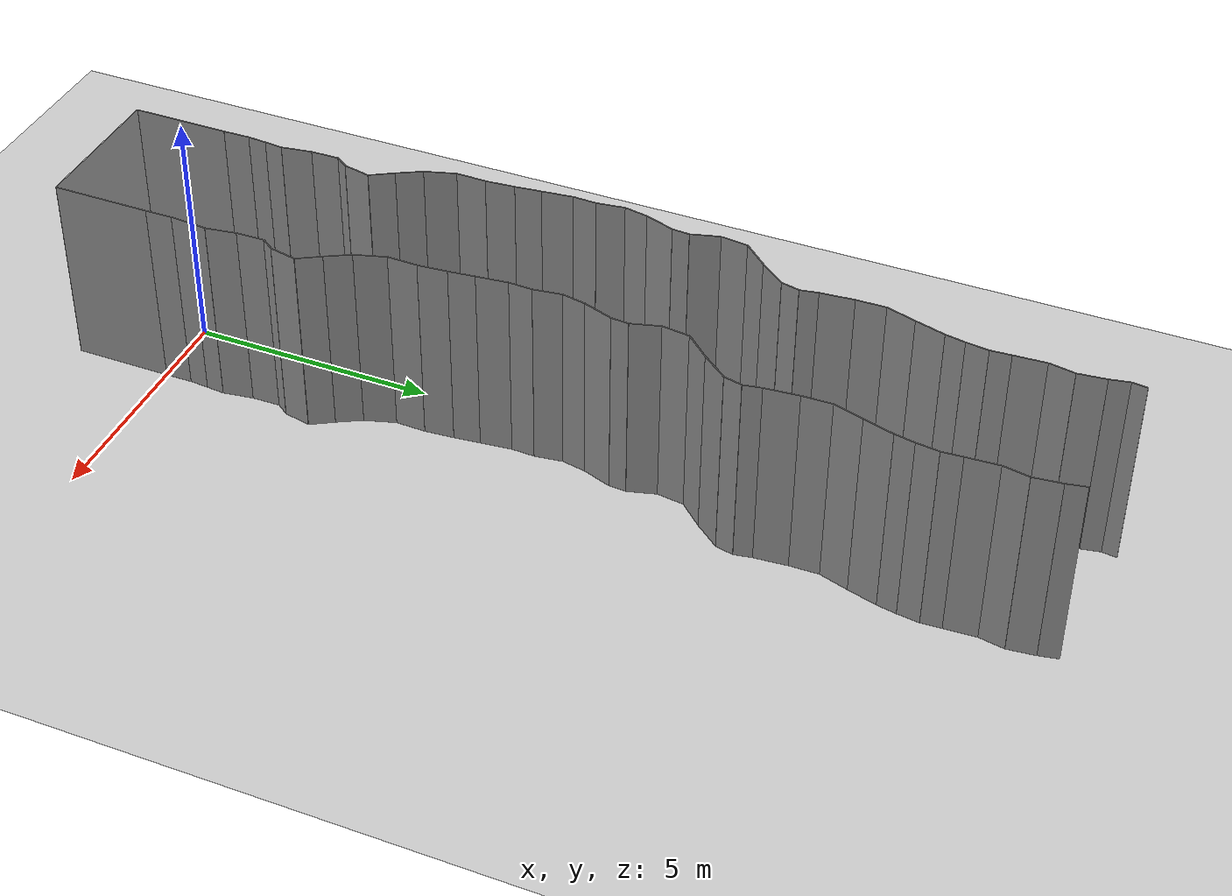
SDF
<sdf version="1.6">
 <world name="default">
  <model name="ground_plane">
   <static>1</static>
   <link name="link">
    <collision name="collision">
     <geometry><plane><normal>0 0 1</normal><size>200 200</size></plane></geometry>
     <surface><friction><ode><mu>100</mu><mu2>50</mu2></ode></friction></surface>
    </collision>
    <visual name="visual">
     <cast_shadows>0</cast_shadows>
     <geometry><plane><normal>0 0 1</normal><size>200 200</size></plane></geometry>
     <material>
      <script><uri>file://media/materials/scripts/gazebo.material</uri><name>Gazebo/Grey</name></script>
     </material>
    </visual>
   </link>
   <pose>0 100 0 0 -0 0</pose>
  </model>
  <model name="wall_back">
   <static>1</static>
   <pose>0.0 -2 2 0.0 0 0.0</pose>
   <link name="link">
    <collision name="collision"><geometry><box><size>3 0.02 4</size></box></geometry></collision>
    <visual name="visual">
     <material>
      <script><name>Gazebo/Grey</name><uri>file://media/materials/scripts/gazebo.material</uri></script>
     </material>
     <geometry><box><size>3 0.02 4</size></box></geometry>
    </visual>
   </link>
  </model>
  <model name="wall_left">
   <static>1</static>
   <pose>1.5 -1 2 0 0 0.00</pose>
   <link name="link">
    <collision name="collision"><geometry><box><size>0.02 2 4</size></box></geometry></collision>
    <visual name="visual">
     <material>
      <script><name>Gazebo/Grey</name><uri>file://media/materials/scripts/gazebo.material</uri></script>
     </material>
     <geometry><box><size>0.02 2 4</size></box></geometry>
    </visual>
   </link>
  </model>
  <model name="wall_right">
   <static>1</static>
   <pose>-1.5 -1 2 0 0 0.00</pose>
   <link name="link">
    <collision name="collision"><geometry><box><size>0.02 2 4</size></box></geometry></collision>
    <visual name="visual">
     <material>
      <script><name>Gazebo/Grey</name><uri>file://media/materials/scripts/gazebo.material</uri></script>
     </material>
     <geometry><box><size>0.02 2 4</size></box></geometry>
    </visual>
   </link>
  </model>
  <model name="wall_0">
   <static>1</static>
   <pose>-1.5054074927113055 0.2771026538506849 2 0 0 0.01951192592504633</pose>
   <link name="link">
    <collision name="collision"><geometry><box><size>0.02 0.554310821646 4</size></box></geometry></collision>
    <visual name="visual">
     <material>
      <script><name>Gazebo/Grey</name><uri>file://media/materials/scripts/gazebo.material</uri></script>
     </material>
     <geometry><box><size>0.02 0.554310821646 4</size></box></geometry>
    </visual>
   </link>
  </model>
  <model name="wall_1">
   <static>1</static>
   <pose>1.4945925072886945 0.2771026538506849 2 0 0 0.01951192592504633</pose>
   <link name="link">
    <collision name="collision"><geometry><box><size>0.02 0.554310821646 4</size></box></geometry></collision>
    <visual name="visual">
     <material>
      <script><name>Gazebo/Grey</name><uri>file://media/materials/scripts/gazebo.material</uri></script>
     </material>
     <geometry><box><size>0.02 0.554310821646 4</size></box></geometry>
    </visual>
   </link>
  </model>
  <model name="wall_2">
   <static>1</static>
   <pose>-1.4959044309255267 0.7502712776522686 2 0 0 -0.0759025611334684</pose>
   <link name="link">
    <collision name="collision"><geometry><box><size>0.02 0.393264232842 4</size></box></geometry></collision>
    <visual name="visual">
     <material>
      <script><name>Gazebo/Grey</name><uri>file://media/materials/scripts/gazebo.material</uri></script>
     </material>
     <geometry><box><size>0.02 0.393264232842 4</size></box></geometry>
    </visual>
   </link>
  </model>
  <model name="wall_3">
   <static>1</static>
   <pose>1.5040955690744733 0.7502712776522686 2 0 0 -0.0759025611334684</pose>
   <link name="link">
    <collision name="collision"><geometry><box><size>0.02 0.393264232842 4</size></box></geometry></collision>
    <visual name="visual">
     <material>
      <script><name>Gazebo/Grey</name><uri>file://media/materials/scripts/gazebo.material</uri></script>
     </material>
     <geometry><box><size>0.02 0.393264232842 4</size></box></geometry>
    </visual>
   </link>
  </model>
  <model name="wall_4">
   <static>1</static>
   <pose>-1.4643491921734009 1.134139191659948 2 0 0 -0.0883979491608856</pose>
   <link name="link">
    <collision name="collision"><geometry><box><size>0.02 0.377076202938 4</size></box></geometry></collision>
    <visual name="visual">
     <material>
      <script><name>Gazebo/Grey</name><uri>file://media/materials/scripts/gazebo.material</uri></script>
     </material>
     <geometry><box><size>0.02 0.377076202938 4</size></box></geometry>
    </visual>
   </link>
  </model>
  <model name="wall_5">
   <static>1</static>
   <pose>1.5356508078265991 1.134139191659948 2 0 0 -0.0883979491608856</pose>
   <link name="link">
    <collision name="collision"><geometry><box><size>0.02 0.377076202938 4</size></box></geometry></collision>
    <visual name="visual">
     <material>
      <script><name>Gazebo/Grey</name><uri>file://media/materials/scripts/gazebo.material</uri></script>
     </material>
     <geometry><box><size>0.02 0.377076202938 4</size></box></geometry>
    </visual>
   </link>
  </model>
  <model name="wall_6">
   <static>1</static>
   <pose>-1.4956004174545228 1.6342153116711633 2 0 0 0.15219171952678584</pose>
   <link name="link">
    <collision name="collision"><geometry><box><size>0.02 0.631851815281 4</size></box></geometry></collision>
    <visual name="visual">
     <material>
      <script><name>Gazebo/Grey</name><uri>file://media/materials/scripts/gazebo.material</uri></script>
     </material>
     <geometry><box><size>0.02 0.631851815281 4</size></box></geometry>
    </visual>
   </link>
  </model>
  <model name="wall_7">
   <static>1</static>
   <pose>1.5043995825454772 1.6342153116711633 2 0 0 0.15219171952678584</pose>
   <link name="link">
    <collision name="collision"><geometry><box><size>0.02 0.631851815281 4</size></box></geometry></collision>
    <visual name="visual">
     <material>
      <script><name>Gazebo/Grey</name><uri>file://media/materials/scripts/gazebo.material</uri></script>
     </material>
     <geometry><box><size>0.02 0.631851815281 4</size></box></geometry>
    </visual>
   </link>
  </model>
  <model name="wall_8">
   <static>1</static>
   <pose>-1.5485579459105738 2.2367578282285723 2 0 0 0.017435955871296434</pose>
   <link name="link">
    <collision name="collision"><geometry><box><size>0.02 0.580624937606 4</size></box></geometry></collision>
    <visual name="visual">
     <material>
      <script><name>Gazebo/Grey</name><uri>file://media/materials/scripts/gazebo.material</uri></script>
     </material>
     <geometry><box><size>0.02 0.580624937606 4</size></box></geometry>
    </visual>
   </link>
  </model>
  <model name="wall_9">
   <static>1</static>
   <pose>1.4514420540894262 2.2367578282285723 2 0 0 0.017435955871296434</pose>
   <link name="link">
    <collision name="collision"><geometry><box><size>0.02 0.580624937606 4</size></box></geometry></collision>
    <visual name="visual">
     <material>
      <script><name>Gazebo/Grey</name><uri>file://media/materials/scripts/gazebo.material</uri></script>
     </material>
     <geometry><box><size>0.02 0.580624937606 4</size></box></geometry>
    </visual>
   </link>
  </model>
  <model name="wall_10">
   <static>1</static>
   <pose>-1.462039240900548 2.654437864276564 2 0 0 -0.6232157235891173</pose>
   <link name="link">
    <collision name="collision"><geometry><box><size>0.02 0.313819667117 4</size></box></geometry></collision>
    <visual name="visual">
     <material>
      <script><name>Gazebo/Grey</name><uri>file://media/materials/scripts/gazebo.material</uri></script>
     </material>
     <geometry><box><size>0.02 0.313819667117 4</size></box></geometry>
    </visual>
   </link>
  </model>
  <model name="wall_11">
   <static>1</static>
   <pose>1.537960759099452 2.654437864276564 2 0 0 -0.6232157235891173</pose>
   <link name="link">
    <collision name="collision"><geometry><box><size>0.02 0.313819667117 4</size></box></geometry></collision>
    <visual name="visual">
     <material>
      <script><name>Gazebo/Grey</name><uri>file://media/materials/scripts/gazebo.material</uri></script>
     </material>
     <geometry><box><size>0.02 0.313819667117 4</size></box></geometry>
    </visual>
   </link>
  </model>
  <model name="wall_12">
   <static>1</static>
   <pose>-1.3113700297301076 3.058214808628439 2 0 0 -0.21063580695061418</pose>
   <link name="link">
    <collision name="collision"><geometry><box><size>0.02 0.565222955651 4</size></box></geometry></collision>
    <visual name="visual">
     <material>
      <script><name>Gazebo/Grey</name><uri>file://media/materials/scripts/gazebo.material</uri></script>
     </material>
     <geometry><box><size>0.02 0.565222955651 4</size></box></geometry>
    </visual>
   </link>
  </model>
  <model name="wall_13">
   <static>1</static>
   <pose>1.6886299702698924 3.058214808628439 2 0 0 -0.21063580695061418</pose>
   <link name="link">
    <collision name="collision"><geometry><box><size>0.02 0.565222955651 4</size></box></geometry></collision>
    <visual name="visual">
     <material>
      <script><name>Gazebo/Grey</name><uri>file://media/materials/scripts/gazebo.material</uri></script>
     </material>
     <geometry><box><size>0.02 0.565222955651 4</size></box></geometry>
    </visual>
   </link>
  </model>
  <model name="wall_14">
   <static>1</static>
   <pose>-1.387883242274648 3.5617061277047846 2 0 0 0.5382361326546208</pose>
   <link name="link">
    <collision name="collision"><geometry><box><size>0.02 0.529052667385 4</size></box></geometry></collision>
    <visual name="visual">
     <material>
      <script><name>Gazebo/Grey</name><uri>file://media/materials/scripts/gazebo.material</uri></script>
     </material>
     <geometry><box><size>0.02 0.529052667385 4</size></box></geometry>
    </visual>
   </link>
  </model>
  <model name="wall_15">
   <static>1</static>
   <pose>1.612116757725352 3.5617061277047846 2 0 0 0.5382361326546208</pose>
   <link name="link">
    <collision name="collision"><geometry><box><size>0.02 0.529052667385 4</size></box></geometry></collision>
    <visual name="visual">
     <material>
      <script><name>Gazebo/Grey</name><uri>file://media/materials/scripts/gazebo.material</uri></script>
     </material>
     <geometry><box><size>0.02 0.529052667385 4</size></box></geometry>
    </visual>
   </link>
  </model>
  <model name="wall_16">
   <static>1</static>
   <pose>-1.6585811992603445 4.029327164597183 2 0 0 0.5118126217211321</pose>
   <link name="link">
    <collision name="collision"><geometry><box><size>0.02 0.55168367622 4</size></box></geometry></collision>
    <visual name="visual">
     <material>
      <script><name>Gazebo/Grey</name><uri>file://media/materials/scripts/gazebo.material</uri></script>
     </material>
     <geometry><box><size>0.02 0.55168367622 4</size></box></geometry>
    </visual>
   </link>
  </model>
  <model name="wall_17">
   <static>1</static>
   <pose>1.3414188007396555 4.029327164597183 2 0 0 0.5118126217211321</pose>
   <link name="link">
    <collision name="collision"><geometry><box><size>0.02 0.55168367622 4</size></box></geometry></collision>
    <visual name="visual">
     <material>
      <script><name>Gazebo/Grey</name><uri>file://media/materials/scripts/gazebo.material</uri></script>
     </material>
     <geometry><box><size>0.02 0.55168367622 4</size></box></geometry>
    </visual>
   </link>
  </model>
  <model name="wall_18">
   <static>1</static>
   <pose>-1.8909177781409472 4.583250966037759 2 0 0 0.3008320638870248</pose>
   <link name="link">
    <collision name="collision"><geometry><box><size>0.02 0.656333428633 4</size></box></geometry></collision>
    <visual name="visual">
     <material>
      <script><name>Gazebo/Grey</name><uri>file://media/materials/scripts/gazebo.material</uri></script>
     </material>
     <geometry><box><size>0.02 0.656333428633 4</size></box></geometry>
    </visual>
   </link>
  </model>
  <model name="wall_19">
   <static>1</static>
   <pose>1.1090822218590528 4.583250966037759 2 0 0 0.3008320638870248</pose>
   <link name="link">
    <collision name="collision"><geometry><box><size>0.02 0.656333428633 4</size></box></geometry></collision>
    <visual name="visual">
     <material>
      <script><name>Gazebo/Grey</name><uri>file://media/materials/scripts/gazebo.material</uri></script>
     </material>
     <geometry><box><size>0.02 0.656333428633 4</size></box></geometry>
    </visual>
   </link>
  </model>
  <model name="wall_20">
   <static>1</static>
   <pose>-1.9805885233839635 5.206537923220193 2 0 0 -0.02442560122571733</pose>
   <link name="link">
    <collision name="collision"><geometry><box><size>0.02 0.619901155349 4</size></box></geometry></collision>
    <visual name="visual">
     <material>
      <script><name>Gazebo/Grey</name><uri>file://media/materials/scripts/gazebo.material</uri></script>
     </material>
     <geometry><box><size>0.02 0.619901155349 4</size></box></geometry>
    </visual>
   </link>
  </model>
  <model name="wall_21">
   <static>1</static>
   <pose>1.0194114766160365 5.206537923220193 2 0 0 -0.02442560122571733</pose>
   <link name="link">
    <collision name="collision"><geometry><box><size>0.02 0.619901155349 4</size></box></geometry></collision>
    <visual name="visual">
     <material>
      <script><name>Gazebo/Grey</name><uri>file://media/materials/scripts/gazebo.material</uri></script>
     </material>
     <geometry><box><size>0.02 0.619901155349 4</size></box></geometry>
    </visual>
   </link>
  </model>
  <model name="wall_22">
   <static>1</static>
   <pose>-1.9973362197201507 5.817134929957269 2 0 0 0.08068421558176188</pose>
   <link name="link">
    <collision name="collision"><geometry><box><size>0.02 0.603440885994 4</size></box></geometry></collision>
    <visual name="visual">
     <material>
      <script><name>Gazebo/Grey</name><uri>file://media/materials/scripts/gazebo.material</uri></script>
     </material>
     <geometry><box><size>0.02 0.603440885994 4</size></box></geometry>
    </visual>
   </link>
  </model>
  <model name="wall_23">
   <static>1</static>
   <pose>1.0026637802798493 5.817134929957269 2 0 0 0.08068421558176188</pose>
   <link name="link">
    <collision name="collision"><geometry><box><size>0.02 0.603440885994 4</size></box></geometry></collision>
    <visual name="visual">
     <material>
      <script><name>Gazebo/Grey</name><uri>file://media/materials/scripts/gazebo.material</uri></script>
     </material>
     <geometry><box><size>0.02 0.603440885994 4</size></box></geometry>
    </visual>
   </link>
  </model>
  <model name="wall_24">
   <static>1</static>
   <pose>-2.0521156811494174 6.386560087364572 2 0 0 0.11289104059538006</pose>
   <link name="link">
    <collision name="collision"><geometry><box><size>0.02 0.540815066134 4</size></box></geometry></collision>
    <visual name="visual">
     <material>
      <script><name>Gazebo/Grey</name><uri>file://media/materials/scripts/gazebo.material</uri></script>
     </material>
     <geometry><box><size>0.02 0.540815066134 4</size></box></geometry>
    </visual>
   </link>
  </model>
  <model name="wall_25">
   <static>1</static>
   <pose>0.9478843188505826 6.386560087364572 2 0 0 0.11289104059538006</pose>
   <link name="link">
    <collision name="collision"><geometry><box><size>0.02 0.540815066134 4</size></box></geometry></collision>
    <visual name="visual">
     <material>
      <script><name>Gazebo/Grey</name><uri>file://media/materials/scripts/gazebo.material</uri></script>
     </material>
     <geometry><box><size>0.02 0.540815066134 4</size></box></geometry>
    </visual>
   </link>
  </model>
  <model name="wall_26">
   <static>1</static>
   <pose>-2.118105277894146 6.975692398489997 2 0 0 0.11041890806038186</pose>
   <link name="link">
    <collision name="collision"><geometry><box><size>0.02 0.64481900844 4</size></box></geometry></collision>
    <visual name="visual">
     <material>
      <script><name>Gazebo/Grey</name><uri>file://media/materials/scripts/gazebo.material</uri></script>
     </material>
     <geometry><box><size>0.02 0.64481900844 4</size></box></geometry>
    </visual>
   </link>
  </model>
  <model name="wall_27">
   <static>1</static>
   <pose>0.8818947221058542 6.975692398489997 2 0 0 0.11041890806038186</pose>
   <link name="link">
    <collision name="collision"><geometry><box><size>0.02 0.64481900844 4</size></box></geometry></collision>
    <visual name="visual">
     <material>
      <script><name>Gazebo/Grey</name><uri>file://media/materials/scripts/gazebo.material</uri></script>
     </material>
     <geometry><box><size>0.02 0.64481900844 4</size></box></geometry>
    </visual>
   </link>
  </model>
  <model name="wall_28">
   <static>1</static>
   <pose>-2.144456496622843 7.5351797083397845 2 0 0 -0.038370300423932795</pose>
   <link name="link">
    <collision name="collision"><geometry><box><size>0.02 0.478434695416 4</size></box></geometry></collision>
    <visual name="visual">
     <material>
      <script><name>Gazebo/Grey</name><uri>file://media/materials/scripts/gazebo.material</uri></script>
     </material>
     <geometry><box><size>0.02 0.478434695416 4</size></box></geometry>
    </visual>
   </link>
  </model>
  <model name="wall_29">
   <static>1</static>
   <pose>0.8555435033771568 7.5351797083397845 2 0 0 -0.038370300423932795</pose>
   <link name="link">
    <collision name="collision"><geometry><box><size>0.02 0.478434695416 4</size></box></geometry></collision>
    <visual name="visual">
     <material>
      <script><name>Gazebo/Grey</name><uri>file://media/materials/scripts/gazebo.material</uri></script>
     </material>
     <geometry><box><size>0.02 0.478434695416 4</size></box></geometry>
    </visual>
   </link>
  </model>
  <model name="wall_30">
   <static>1</static>
   <pose>-2.1742142331606984 8.060168310753168 2 0 0 0.135326887934024</pose>
   <link name="link">
    <collision name="collision"><geometry><box><size>0.02 0.577171577901 4</size></box></geometry></collision>
    <visual name="visual">
     <material>
      <script><name>Gazebo/Grey</name><uri>file://media/materials/scripts/gazebo.material</uri></script>
     </material>
     <geometry><box><size>0.02 0.577171577901 4</size></box></geometry>
    </visual>
   </link>
  </model>
  <model name="wall_31">
   <static>1</static>
   <pose>0.8257857668393016 8.060168310753168 2 0 0 0.135326887934024</pose>
   <link name="link">
    <collision name="collision"><geometry><box><size>0.02 0.577171577901 4</size></box></geometry></collision>
    <visual name="visual">
     <material>
      <script><name>Gazebo/Grey</name><uri>file://media/materials/scripts/gazebo.material</uri></script>
     </material>
     <geometry><box><size>0.02 0.577171577901 4</size></box></geometry>
    </visual>
   </link>
  </model>
  <model name="wall_32">
   <static>1</static>
   <pose>-2.1672094972830904 8.588856348511438 2 0 0 -0.18703950172446787</pose>
   <link name="link">
    <collision name="collision"><geometry><box><size>0.02 0.494098971182 4</size></box></geometry></collision>
    <visual name="visual">
     <material>
      <script><name>Gazebo/Grey</name><uri>file://media/materials/scripts/gazebo.material</uri></script>
     </material>
     <geometry><box><size>0.02 0.494098971182 4</size></box></geometry>
    </visual>
   </link>
  </model>
  <model name="wall_33">
   <static>1</static>
   <pose>0.8327905027169096 8.588856348511438 2 0 0 -0.18703950172446787</pose>
   <link name="link">
    <collision name="collision"><geometry><box><size>0.02 0.494098971182 4</size></box></geometry></collision>
    <visual name="visual">
     <material>
      <script><name>Gazebo/Grey</name><uri>file://media/materials/scripts/gazebo.material</uri></script>
     </material>
     <geometry><box><size>0.02 0.494098971182 4</size></box></geometry>
    </visual>
   </link>
  </model>
  <model name="wall_34">
   <static>1</static>
   <pose>-2.015668417744564 9.131479882684664 2 0 0 -0.33858379931227994</pose>
   <link name="link">
    <collision name="collision"><geometry><box><size>0.02 0.635866325784 4</size></box></geometry></collision>
    <visual name="visual">
     <material>
      <script><name>Gazebo/Grey</name><uri>file://media/materials/scripts/gazebo.material</uri></script>
     </material>
     <geometry><box><size>0.02 0.635866325784 4</size></box></geometry>
    </visual>
   </link>
  </model>
  <model name="wall_35">
   <static>1</static>
   <pose>0.9843315822554359 9.131479882684664 2 0 0 -0.33858379931227994</pose>
   <link name="link">
    <collision name="collision"><geometry><box><size>0.02 0.635866325784 4</size></box></geometry></collision>
    <visual name="visual">
     <material>
      <script><name>Gazebo/Grey</name><uri>file://media/materials/scripts/gazebo.material</uri></script>
     </material>
     <geometry><box><size>0.02 0.635866325784 4</size></box></geometry>
    </visual>
   </link>
  </model>
  <model name="wall_36">
   <static>1</static>
   <pose>-1.8993605516469905 9.607418675851601 2 0 0 -0.06073455969819481</pose>
   <link name="link">
    <collision name="collision"><geometry><box><size>0.02 0.352762347324 4</size></box></geometry></collision>
    <visual name="visual">
     <material>
      <script><name>Gazebo/Grey</name><uri>file://media/materials/scripts/gazebo.material</uri></script>
     </material>
     <geometry><box><size>0.02 0.352762347324 4</size></box></geometry>
    </visual>
   </link>
  </model>
  <model name="wall_37">
   <static>1</static>
   <pose>1.1006394483530095 9.607418675851601 2 0 0 -0.06073455969819481</pose>
   <link name="link">
    <collision name="collision"><geometry><box><size>0.02 0.352762347324 4</size></box></geometry></collision>
    <visual name="visual">
     <material>
      <script><name>Gazebo/Grey</name><uri>file://media/materials/scripts/gazebo.material</uri></script>
     </material>
     <geometry><box><size>0.02 0.352762347324 4</size></box></geometry>
    </visual>
   </link>
  </model>
  <model name="wall_38">
   <static>1</static>
   <pose>-1.9698788280360264 10.072827773237233 2 0 0 0.2736663470046549</pose>
   <link name="link">
    <collision name="collision"><geometry><box><size>0.02 0.601074348031 4</size></box></geometry></collision>
    <visual name="visual">
     <material>
      <script><name>Gazebo/Grey</name><uri>file://media/materials/scripts/gazebo.material</uri></script>
     </material>
     <geometry><box><size>0.02 0.601074348031 4</size></box></geometry>
    </visual>
   </link>
  </model>
  <model name="wall_39">
   <static>1</static>
   <pose>1.0301211719639736 10.072827773237233 2 0 0 0.2736663470046549</pose>
   <link name="link">
    <collision name="collision"><geometry><box><size>0.02 0.601074348031 4</size></box></geometry></collision>
    <visual name="visual">
     <material>
      <script><name>Gazebo/Grey</name><uri>file://media/materials/scripts/gazebo.material</uri></script>
     </material>
     <geometry><box><size>0.02 0.601074348031 4</size></box></geometry>
    </visual>
   </link>
  </model>
  <model name="wall_40">
   <static>1</static>
   <pose>-2.0156612284845594 10.640264472965416 2 0 0 -0.1267664764820144</pose>
   <link name="link">
    <collision name="collision"><geometry><box><size>0.02 0.560665985813 4</size></box></geometry></collision>
    <visual name="visual">
     <material>
      <script><name>Gazebo/Grey</name><uri>file://media/materials/scripts/gazebo.material</uri></script>
     </material>
     <geometry><box><size>0.02 0.560665985813 4</size></box></geometry>
    </visual>
   </link>
  </model>
  <model name="wall_41">
   <static>1</static>
   <pose>0.9843387715154406 10.640264472965416 2 0 0 -0.1267664764820144</pose>
   <link name="link">
    <collision name="collision"><geometry><box><size>0.02 0.560665985813 4</size></box></geometry></collision>
    <visual name="visual">
     <material>
      <script><name>Gazebo/Grey</name><uri>file://media/materials/scripts/gazebo.material</uri></script>
     </material>
     <geometry><box><size>0.02 0.560665985813 4</size></box></geometry>
    </visual>
   </link>
  </model>
  <model name="wall_42">
   <static>1</static>
   <pose>-1.756125133555819 11.155642570887409 2 0 0 -0.7567963504653398</pose>
   <link name="link">
    <collision name="collision"><geometry><box><size>0.02 0.652769425243 4</size></box></geometry></collision>
    <visual name="visual">
     <material>
      <script><name>Gazebo/Grey</name><uri>file://media/materials/scripts/gazebo.material</uri></script>
     </material>
     <geometry><box><size>0.02 0.652769425243 4</size></box></geometry>
    </visual>
   </link>
  </model>
  <model name="wall_43">
   <static>1</static>
   <pose>1.243874866444181 11.155642570887409 2 0 0 -0.7567963504653398</pose>
   <link name="link">
    <collision name="collision"><geometry><box><size>0.02 0.652769425243 4</size></box></geometry></collision>
    <visual name="visual">
     <material>
      <script><name>Gazebo/Grey</name><uri>file://media/materials/scripts/gazebo.material</uri></script>
     </material>
     <geometry><box><size>0.02 0.652769425243 4</size></box></geometry>
    </visual>
   </link>
  </model>
  <model name="wall_44">
   <static>1</static>
   <pose>-1.3314973967981687 11.641816773508703 2 0 0 -0.6782337334837881</pose>
   <link name="link">
    <collision name="collision"><geometry><box><size>0.02 0.63923304881 4</size></box></geometry></collision>
    <visual name="visual">
     <material>
      <script><name>Gazebo/Grey</name><uri>file://media/materials/scripts/gazebo.material</uri></script>
     </material>
     <geometry><box><size>0.02 0.63923304881 4</size></box></geometry>
    </visual>
   </link>
  </model>
  <model name="wall_45">
   <static>1</static>
   <pose>1.6685026032018313 11.641816773508703 2 0 0 -0.6782337334837881</pose>
   <link name="link">
    <collision name="collision"><geometry><box><size>0.02 0.63923304881 4</size></box></geometry></collision>
    <visual name="visual">
     <material>
      <script><name>Gazebo/Grey</name><uri>file://media/materials/scripts/gazebo.material</uri></script>
     </material>
     <geometry><box><size>0.02 0.63923304881 4</size></box></geometry>
    </visual>
   </link>
  </model>
  <model name="wall_46">
   <static>1</static>
   <pose>-1.0887344343260754 12.073601627640796 2 0 0 -0.22690634049711625</pose>
   <link name="link">
    <collision name="collision"><geometry><box><size>0.02 0.375433850401 4</size></box></geometry></collision>
    <visual name="visual">
     <material>
      <script><name>Gazebo/Grey</name><uri>file://media/materials/scripts/gazebo.material</uri></script>
     </material>
     <geometry><box><size>0.02 0.375433850401 4</size></box></geometry>
    </visual>
   </link>
  </model>
  <model name="wall_47">
   <static>1</static>
   <pose>1.9112655656739246 12.073601627640796 2 0 0 -0.22690634049711625</pose>
   <link name="link">
    <collision name="collision"><geometry><box><size>0.02 0.375433850401 4</size></box></geometry></collision>
    <visual name="visual">
     <material>
      <script><name>Gazebo/Grey</name><uri>file://media/materials/scripts/gazebo.material</uri></script>
     </material>
     <geometry><box><size>0.02 0.375433850401 4</size></box></geometry>
    </visual>
   </link>
  </model>
  <model name="wall_48">
   <static>1</static>
   <pose>-1.0788543452916426 12.437245227300805 2 0 0 0.17710984068795022</pose>
   <link name="link">
    <collision name="collision"><geometry><box><size>0.02 0.367221277398 4</size></box></geometry></collision>
    <visual name="visual">
     <material>
      <script><name>Gazebo/Grey</name><uri>file://media/materials/scripts/gazebo.material</uri></script>
     </material>
     <geometry><box><size>0.02 0.367221277398 4</size></box></geometry>
    </visual>
   </link>
  </model>
  <model name="wall_49">
   <static>1</static>
   <pose>1.9211456547083574 12.437245227300805 2 0 0 0.17710984068795022</pose>
   <link name="link">
    <collision name="collision"><geometry><box><size>0.02 0.367221277398 4</size></box></geometry></collision>
    <visual name="visual">
     <material>
      <script><name>Gazebo/Grey</name><uri>file://media/materials/scripts/gazebo.material</uri></script>
     </material>
     <geometry><box><size>0.02 0.367221277398 4</size></box></geometry>
    </visual>
   </link>
  </model>
  <model name="wall_50">
   <static>1</static>
   <pose>-1.1404934638177369 12.956281659625823 2 0 0 0.08636395326375335</pose>
   <link name="link">
    <collision name="collision"><geometry><box><size>0.02 0.67912716718 4</size></box></geometry></collision>
    <visual name="visual">
     <material>
      <script><name>Gazebo/Grey</name><uri>file://media/materials/scripts/gazebo.material</uri></script>
     </material>
     <geometry><box><size>0.02 0.67912716718 4</size></box></geometry>
    </visual>
   </link>
  </model>
  <model name="wall_51">
   <static>1</static>
   <pose>1.8595065361822631 12.956281659625823 2 0 0 0.08636395326375335</pose>
   <link name="link">
    <collision name="collision"><geometry><box><size>0.02 0.67912716718 4</size></box></geometry></collision>
    <visual name="visual">
     <material>
      <script><name>Gazebo/Grey</name><uri>file://media/materials/scripts/gazebo.material</uri></script>
     </material>
     <geometry><box><size>0.02 0.67912716718 4</size></box></geometry>
    </visual>
   </link>
  </model>
  <model name="wall_52">
   <static>1</static>
   <pose>-1.174903417268751 13.59281125453791 2 0 0 0.017167327511310754</pose>
   <link name="link">
    <collision name="collision"><geometry><box><size>0.02 0.596551067461 4</size></box></geometry></collision>
    <visual name="visual">
     <material>
      <script><name>Gazebo/Grey</name><uri>file://media/materials/scripts/gazebo.material</uri></script>
     </material>
     <geometry><box><size>0.02 0.596551067461 4</size></box></geometry>
    </visual>
   </link>
  </model>
  <model name="wall_53">
   <static>1</static>
   <pose>1.825096582731249 13.59281125453791 2 0 0 0.017167327511310754</pose>
   <link name="link">
    <collision name="collision"><geometry><box><size>0.02 0.596551067461 4</size></box></geometry></collision>
    <visual name="visual">
     <material>
      <script><name>Gazebo/Grey</name><uri>file://media/materials/scripts/gazebo.material</uri></script>
     </material>
     <geometry><box><size>0.02 0.596551067461 4</size></box></geometry>
    </visual>
   </link>
  </model>
  <model name="wall_54">
   <static>1</static>
   <pose>-1.0877183155078667 14.187900098017359 2 0 0 -0.3014650150407536</pose>
   <link name="link">
    <collision name="collision"><geometry><box><size>0.02 0.62175406415 4</size></box></geometry></collision>
    <visual name="visual">
     <material>
      <script><name>Gazebo/Grey</name><uri>file://media/materials/scripts/gazebo.material</uri></script>
     </material>
     <geometry><box><size>0.02 0.62175406415 4</size></box></geometry>
    </visual>
   </link>
  </model>
  <model name="wall_55">
   <static>1</static>
   <pose>1.9122816844921333 14.187900098017359 2 0 0 -0.3014650150407536</pose>
   <link name="link">
    <collision name="collision"><geometry><box><size>0.02 0.62175406415 4</size></box></geometry></collision>
    <visual name="visual">
     <material>
      <script><name>Gazebo/Grey</name><uri>file://media/materials/scripts/gazebo.material</uri></script>
     </material>
     <geometry><box><size>0.02 0.62175406415 4</size></box></geometry>
    </visual>
   </link>
  </model>
  <model name="wall_56">
   <static>1</static>
   <pose>-0.9094705302789531 14.786644750265983 2 0 0 -0.27734635519245476</pose>
   <link name="link">
    <collision name="collision"><geometry><box><size>0.02 0.627764549265 4</size></box></geometry></collision>
    <visual name="visual">
     <material>
      <script><name>Gazebo/Grey</name><uri>file://media/materials/scripts/gazebo.material</uri></script>
     </material>
     <geometry><box><size>0.02 0.627764549265 4</size></box></geometry>
    </visual>
   </link>
  </model>
  <model name="wall_57">
   <static>1</static>
   <pose>2.090529469721047 14.786644750265983 2 0 0 -0.27734635519245476</pose>
   <link name="link">
    <collision name="collision"><geometry><box><size>0.02 0.627764549265 4</size></box></geometry></collision>
    <visual name="visual">
     <material>
      <script><name>Gazebo/Grey</name><uri>file://media/materials/scripts/gazebo.material</uri></script>
     </material>
     <geometry><box><size>0.02 0.627764549265 4</size></box></geometry>
    </visual>
   </link>
  </model>
  <model name="wall_58">
   <static>1</static>
   <pose>-0.7868706307932595 15.287537107344864 2 0 0 -0.1821622284356912</pose>
   <link name="link">
    <collision name="collision"><geometry><box><size>0.02 0.404706083233 4</size></box></geometry></collision>
    <visual name="visual">
     <material>
      <script><name>Gazebo/Grey</name><uri>file://media/materials/scripts/gazebo.material</uri></script>
     </material>
     <geometry><box><size>0.02 0.404706083233 4</size></box></geometry>
    </visual>
   </link>
  </model>
  <model name="wall_59">
   <static>1</static>
   <pose>2.2131293692067406 15.287537107344864 2 0 0 -0.1821622284356912</pose>
   <link name="link">
    <collision name="collision"><geometry><box><size>0.02 0.404706083233 4</size></box></geometry></collision>
    <visual name="visual">
     <material>
      <script><name>Gazebo/Grey</name><uri>file://media/materials/scripts/gazebo.material</uri></script>
     </material>
     <geometry><box><size>0.02 0.404706083233 4</size></box></geometry>
    </visual>
   </link>
  </model>
  <model name="wall_60">
   <static>1</static>
   <pose>-0.7220999563080335 15.711231152706333 2 0 0 -0.12447322867208174</pose>
   <link name="link">
    <collision name="collision"><geometry><box><size>0.02 0.452882012264 4</size></box></geometry></collision>
    <visual name="visual">
     <material>
      <script><name>Gazebo/Grey</name><uri>file://media/materials/scripts/gazebo.material</uri></script>
     </material>
     <geometry><box><size>0.02 0.452882012264 4</size></box></geometry>
    </visual>
   </link>
  </model>
  <model name="wall_61">
   <static>1</static>
   <pose>2.2779000436919663 15.711231152706333 2 0 0 -0.12447322867208174</pose>
   <link name="link">
    <collision name="collision"><geometry><box><size>0.02 0.452882012264 4</size></box></geometry></collision>
    <visual name="visual">
     <material>
      <script><name>Gazebo/Grey</name><uri>file://media/materials/scripts/gazebo.material</uri></script>
     </material>
     <geometry><box><size>0.02 0.452882012264 4</size></box></geometry>
    </visual>
   </link>
  </model>
  <model name="wall_62">
   <static>1</static>
   <pose>-0.7067511571078383 16.140338599885162 2 0 0 0.062361158391564</pose>
   <link name="link">
    <collision name="collision"><geometry><box><size>0.02 0.409632993203 4</size></box></geometry></collision>
    <visual name="visual">
     <material>
      <script><name>Gazebo/Grey</name><uri>file://media/materials/scripts/gazebo.material</uri></script>
     </material>
     <geometry><box><size>0.02 0.409632993203 4</size></box></geometry>
    </visual>
   </link>
  </model>
  <model name="wall_63">
   <static>1</static>
   <pose>2.2932488428921616 16.140338599885162 2 0 0 0.062361158391564</pose>
   <link name="link">
    <collision name="collision"><geometry><box><size>0.02 0.409632993203 4</size></box></geometry></collision>
    <visual name="visual">
     <material>
      <script><name>Gazebo/Grey</name><uri>file://media/materials/scripts/gazebo.material</uri></script>
     </material>
     <geometry><box><size>0.02 0.409632993203 4</size></box></geometry>
    </visual>
   </link>
  </model>
  <model name="wall_64">
   <static>1</static>
   <pose>-0.7367128959855198 16.667386904536393 2 0 0 0.053253464668122086</pose>
   <link name="link">
    <collision name="collision"><geometry><box><size>0.02 0.646175910551 4</size></box></geometry></collision>
    <visual name="visual">
     <material>
      <script><name>Gazebo/Grey</name><uri>file://media/materials/scripts/gazebo.material</uri></script>
     </material>
     <geometry><box><size>0.02 0.646175910551 4</size></box></geometry>
    </visual>
   </link>
  </model>
  <model name="wall_65">
   <static>1</static>
   <pose>2.26328710401448 16.667386904536393 2 0 0 0.053253464668122086</pose>
   <link name="link">
    <collision name="collision"><geometry><box><size>0.02 0.646175910551 4</size></box></geometry></collision>
    <visual name="visual">
     <material>
      <script><name>Gazebo/Grey</name><uri>file://media/materials/scripts/gazebo.material</uri></script>
     </material>
     <geometry><box><size>0.02 0.646175910551 4</size></box></geometry>
    </visual>
   </link>
  </model>
  <model name="wall_66">
   <static>1</static>
   <pose>-0.7079828425071415 17.248373509878917 2 0 0 -0.1759298730560734</pose>
   <link name="link">
    <collision name="collision"><geometry><box><size>0.02 0.524814259136 4</size></box></geometry></collision>
    <visual name="visual">
     <material>
      <script><name>Gazebo/Grey</name><uri>file://media/materials/scripts/gazebo.material</uri></script>
     </material>
     <geometry><box><size>0.02 0.524814259136 4</size></box></geometry>
    </visual>
   </link>
  </model>
  <model name="wall_67">
   <static>1</static>
   <pose>2.2920171574928583 17.248373509878917 2 0 0 -0.1759298730560734</pose>
   <link name="link">
    <collision name="collision"><geometry><box><size>0.02 0.524814259136 4</size></box></geometry></collision>
    <visual name="visual">
     <material>
      <script><name>Gazebo/Grey</name><uri>file://media/materials/scripts/gazebo.material</uri></script>
     </material>
     <geometry><box><size>0.02 0.524814259136 4</size></box></geometry>
    </visual>
   </link>
  </model>
  <model name="wall_68">
   <static>1</static>
   <pose>-0.6925326112370563 17.78629782928836 2 0 0 0.10858682358184547</pose>
   <link name="link">
    <collision name="collision"><geometry><box><size>0.02 0.562447982671 4</size></box></geometry></collision>
    <visual name="visual">
     <material>
      <script><name>Gazebo/Grey</name><uri>file://media/materials/scripts/gazebo.material</uri></script>
     </material>
     <geometry><box><size>0.02 0.562447982671 4</size></box></geometry>
    </visual>
   </link>
  </model>
  <model name="wall_69">
   <static>1</static>
   <pose>2.3074673887629435 17.78629782928836 2 0 0 0.10858682358184547</pose>
   <link name="link">
    <collision name="collision"><geometry><box><size>0.02 0.562447982671 4</size></box></geometry></collision>
    <visual name="visual">
     <material>
      <script><name>Gazebo/Grey</name><uri>file://media/materials/scripts/gazebo.material</uri></script>
     </material>
     <geometry><box><size>0.02 0.562447982671 4</size></box></geometry>
    </visual>
   </link>
  </model>
  <model name="wall_70">
   <static>1</static>
   <pose>-0.7616740574755443 18.261685027293698 2 0 0 0.19494063190426525</pose>
   <link name="link">
    <collision name="collision"><geometry><box><size>0.02 0.399200280215 4</size></box></geometry></collision>
    <visual name="visual">
     <material>
      <script><name>Gazebo/Grey</name><uri>file://media/materials/scripts/gazebo.material</uri></script>
     </material>
     <geometry><box><size>0.02 0.399200280215 4</size></box></geometry>
    </visual>
   </link>
  </model>
  <model name="wall_71">
   <static>1</static>
   <pose>2.2383259425244555 18.261685027293698 2 0 0 0.19494063190426525</pose>
   <link name="link">
    <collision name="collision"><geometry><box><size>0.02 0.399200280215 4</size></box></geometry></collision>
    <visual name="visual">
     <material>
      <script><name>Gazebo/Grey</name><uri>file://media/materials/scripts/gazebo.material</uri></script>
     </material>
     <geometry><box><size>0.02 0.399200280215 4</size></box></geometry>
    </visual>
   </link>
  </model>
  <model name="wall_72">
   <static>1</static>
   <pose>-0.7809799024888369 18.608365236209874 2 0 0 -0.12762203050015697</pose>
   <link name="link">
    <collision name="collision"><geometry><box><size>0.02 0.304195233267 4</size></box></geometry></collision>
    <visual name="visual">
     <material>
      <script><name>Gazebo/Grey</name><uri>file://media/materials/scripts/gazebo.material</uri></script>
     </material>
     <geometry><box><size>0.02 0.304195233267 4</size></box></geometry>
    </visual>
   </link>
  </model>
 </world>
</sdf>
